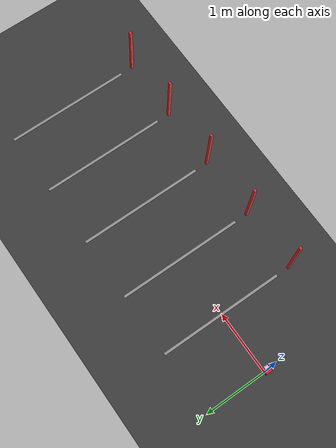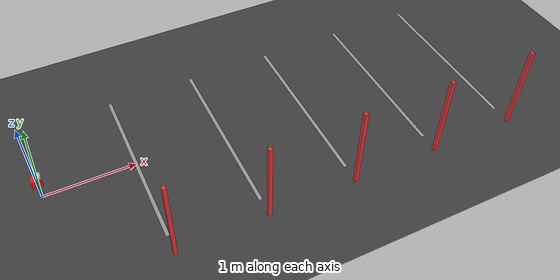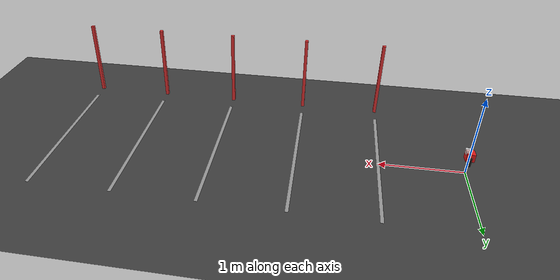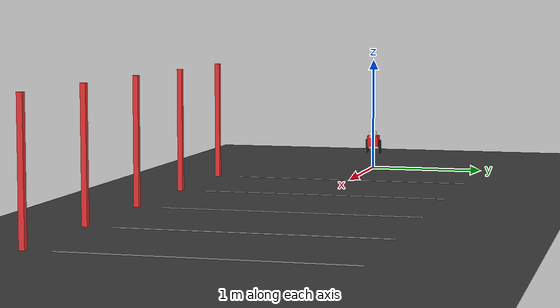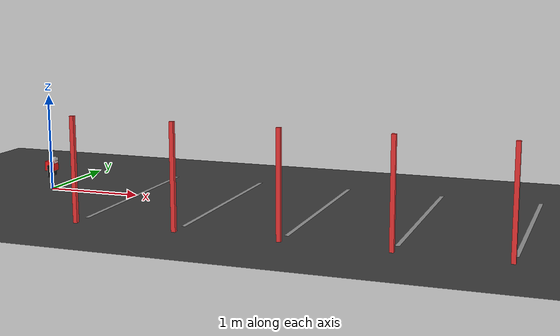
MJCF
<mujoco>
    <option timestep="0.005" gravity="0 0 -9.81"/>

    <asset>
        <texture type="2d" name="tex_track" builtin="checker" rgb1="0.2 0.2 0.2" rgb2="0.3 0.3 0.3" width="512" height="512"/>
        <material name="mat_track" texture="tex_track" texrepeat="10 1" reflectance="0.0"/>
        <material name="mat_line" rgba="1 1 1 0.5"/>
        <material name="mat_post" rgba="0.9 0.2 0.2 1"/>
        <material name="robot_mat" rgba="0.9 0.1 0.1 1"/>
        <material name="leg_mat" rgba="0.1 0.1 0.1 1"/>
    </asset>

    <visual>
        <headlight diffuse="0.6 0.6 0.6" ambient="0.3 0.3 0.3" specular="0 0 0"/>
        <rgba haze="0.15 0.25 0.35 1"/>
    </visual>

    <worldbody>
        <light pos="0 0 4" dir="0 0 -1" directional="true" castshadow="true"/>

        <geom name="floor" type="plane" material="mat_track" size="20 2 0.1"/>

        <geom type="box" pos="1 -1.2 0.5" size="0.02 0.02 0.5" material="mat_post"/>
        <geom type="box" pos="2 -1.2 0.5" size="0.02 0.02 0.5" material="mat_post"/>
        <geom type="box" pos="3 -1.2 0.5" size="0.02 0.02 0.5" material="mat_post"/>
        <geom type="box" pos="4 -1.2 0.5" size="0.02 0.02 0.5" material="mat_post"/>
        <geom type="box" pos="5 -1.2 0.5" size="0.02 0.02 0.5" material="mat_post"/>

        <geom type="box" pos="1 0 0.001" size="0.02 1 0.001" material="mat_line"/>
        <geom type="box" pos="2 0 0.001" size="0.02 1 0.001" material="mat_line"/>
        <geom type="box" pos="3 0 0.001" size="0.02 1 0.001" material="mat_line"/>
        <geom type="box" pos="4 0 0.001" size="0.02 1 0.001" material="mat_line"/>
        <geom type="box" pos="5 0 0.001" size="0.02 1 0.001" material="mat_line"/>

        <body name="torso" pos="0 0 0.250">
            <joint type="free"/>
            <geom name="torso_geom" type="box" size="0.05 0.05 0.05" material="robot_mat" mass="1"/>
            <geom name="head_geom" type="box" pos="0.03 0 0.06" size="0.03 0.03 0.03" rgba="1 1 1 0.8"/>

            <body name="left_leg" pos="0 0.06 0">
                <joint name="hip_left" type="hinge" axis="0 1 0" damping="0.5" range="-100 100"/>
                <geom type="capsule" fromto="0 0 0 0 0 -0.10" size="0.015" material="leg_mat"/>
            </body>

            <body name="right_leg" pos="0 -0.06 0">
                <joint name="hip_right" type="hinge" axis="0 1 0" damping="0.5" range="-100 100"/>
                <geom type="capsule" fromto="0 0 0 0 0 -0.10" size="0.015" material="leg_mat"/>
            </body>
        </body>
    </worldbody>

    <actuator>
        <motor joint="hip_left" gear="12" ctrllimited="true" ctrlrange="-1.0 1.0"/>
        <motor joint="hip_right" gear="12" ctrllimited="true" ctrlrange="-1.0 1.0"/>
    </actuator>
</mujoco>
